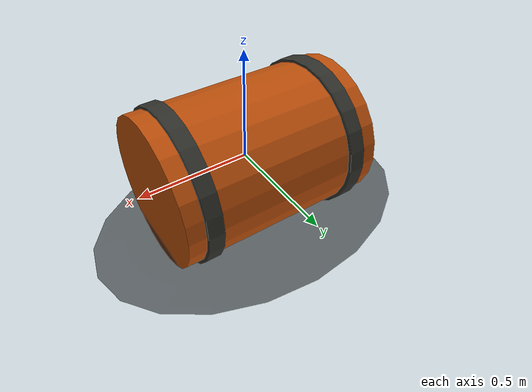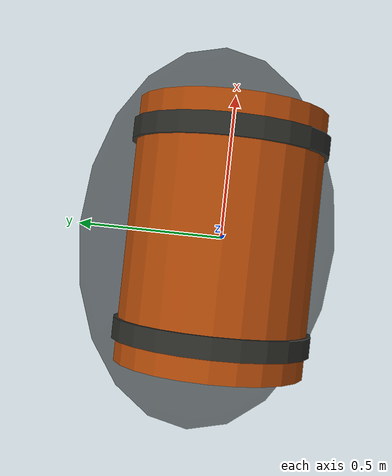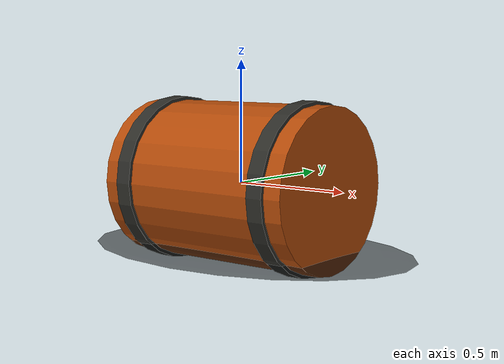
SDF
<?xml version="1.0"?>
<sdf version="1.10"><model name="floating_barrel"><link name="barrel">
  <inertial><mass>35</mass><inertia><ixx>4</ixx><iyy>8</iyy><izz>8</izz></inertia></inertial>
  <collision name="collision"><pose>0 0 0 0 1.5708 0</pose><geometry><cylinder><radius>0.32</radius><length>0.9</length></cylinder></geometry></collision>
  <visual name="body"><pose>0 0 0 0 1.5708 0</pose><geometry><cylinder><radius>0.33</radius><length>0.9</length></cylinder></geometry><material><ambient>0.42 0.18 0.03 1</ambient><diffuse>0.72 0.3 0.04 1</diffuse><specular>0.24 0.18 0.12 1</specular></material></visual>
  <visual name="band_a"><pose>-0.34 0 0 0 1.5708 0</pose><geometry><cylinder><radius>0.345</radius><length>0.07</length></cylinder></geometry><material><ambient>0.09 0.09 0.08 1</ambient><diffuse>0.18 0.18 0.16 1</diffuse></material></visual>
  <visual name="band_b"><pose>0.34 0 0 0 1.5708 0</pose><geometry><cylinder><radius>0.345</radius><length>0.07</length></cylinder></geometry><material><ambient>0.09 0.09 0.08 1</ambient><diffuse>0.18 0.18 0.16 1</diffuse></material></visual>
  <visual name="oil_stain"><pose>0 0.05 -0.28 0 0 0</pose><geometry><ellipsoid><radii>0.75 0.5 0.025</radii></ellipsoid></geometry><material><ambient>0.015 0.02 0.025 0.55</ambient><diffuse>0.025 0.035 0.04 0.55</diffuse><specular>0.7 0.65 0.6 1</specular></material></visual>
  </link><plugin filename="libBoatWaveFollower.so" name="gz::sim::systems::BoatWaveFollower"><mean_z>0.18</mean_z><heave_amplitude>0.1</heave_amplitude><roll_amplitude>0.18</roll_amplitude><pitch_amplitude>0.15</pitch_amplitude><primary_frequency>1.05</primary_frequency><secondary_frequency>1.7</secondary_frequency></plugin></model></sdf>
